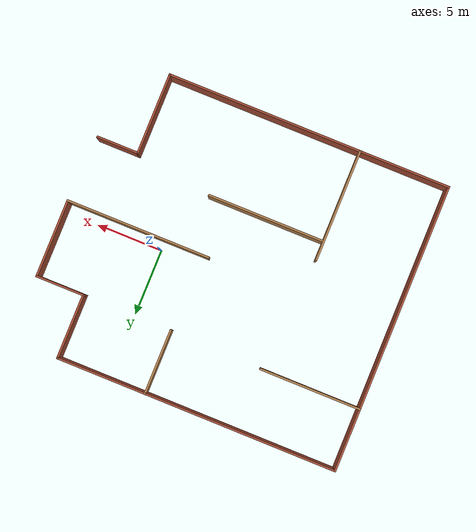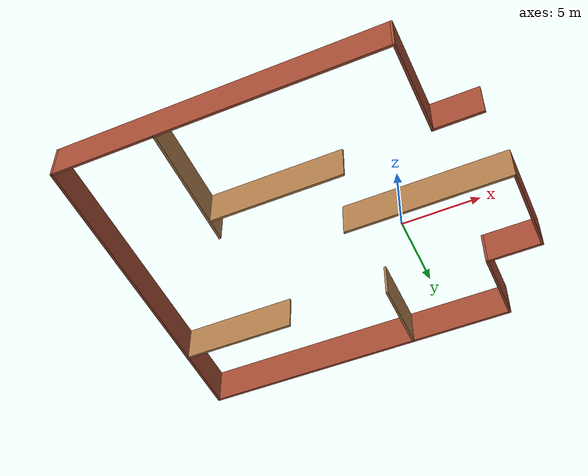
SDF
<?xml version='1.0'?>
<sdf version='1.6'>
  <model name='heat_map_testing'>
    <pose frame=''>-5.0892 -0.972775 0 0 -0 0</pose>
    <link name='Wall_0'>
      <collision name='Wall_0_Collision'>
        <geometry>
          <box>
            <size>11 0.15 2.5</size>
          </box>
        </geometry>
        <pose frame=''>0 0 1.25 0 -0 0</pose>
      </collision>
      <visual name='Wall_0_Visual'>
        <pose frame=''>0 0 1.25 0 -0 0</pose>
        <geometry>
          <box>
            <size>11 0.15 2.5</size>
          </box>
        </geometry>
        <material>
          <script>
            <uri>file://media/materials/scripts/gazebo.material</uri>
            <name>Gazebo/Wood</name>
          </script>
          <ambient>1 1 1 1</ambient>
        </material>
        <meta>
          <layer>0</layer>
        </meta>
      </visual>
      <pose frame=''>7.0542 0.222775 0 0 -0 0</pose>
    </link>
    <link name='Wall_1'>
      <collision name='Wall_1_Collision'>
        <geometry>
          <box>
            <size>6 0.15 2.5</size>
          </box>
        </geometry>
        <pose frame=''>0 0 1.25 0 -0 0</pose>
      </collision>
      <visual name='Wall_1_Visual'>
        <pose frame=''>0 0 1.25 0 -0 0</pose>
        <geometry>
          <box>
            <size>6 0.15 2.5</size>
          </box>
        </geometry>
        <material>
          <script>
            <uri>file://media/materials/scripts/gazebo.material</uri>
            <name>Gazebo/Bricks</name>
          </script>
          <ambient>1 1 1 1</ambient>
        </material>
        <meta>
          <layer>0</layer>
        </meta>
      </visual>
      <pose frame=''>12.4792 3.14778 0 0 -0 1.5708</pose>
    </link>
    <link name='Wall_10'>
      <collision name='Wall_10_Collision'>
        <geometry>
          <box>
            <size>7.75 0.15 2.5</size>
          </box>
        </geometry>
        <pose frame=''>0 0 1.25 0 -0 0</pose>
      </collision>
      <visual name='Wall_10_Visual'>
        <pose frame=''>0 0 1.25 0 -0 0</pose>
        <geometry>
          <box>
            <size>7.75 0.15 2.5</size>
          </box>
        </geometry>
        <material>
          <script>
            <uri>file://media/materials/scripts/gazebo.material</uri>
            <name>Gazebo/Wood</name>
          </script>
          <ambient>1 1 1 1</ambient>
        </material>
        <meta>
          <layer>0</layer>
        </meta>
      </visual>
      <pose frame=''>-8.6792 6.20405 0 0 -0 0</pose>
    </link>
    <link name='Wall_12'>
      <collision name='Wall_12_Collision'>
        <geometry>
          <box>
            <size>8.5 0.15 2.5</size>
          </box>
        </geometry>
        <pose frame=''>0 0 1.25 0 -0 0</pose>
      </collision>
      <visual name='Wall_12_Visual'>
        <pose frame=''>0 0 1.25 0 -0 0</pose>
        <geometry>
          <box>
            <size>8.5 0.15 2.5</size>
          </box>
        </geometry>
        <material>
          <script>
            <uri>file://media/materials/scripts/gazebo.material</uri>
            <name>Gazebo/Wood</name>
          </script>
          <ambient>1 1 1 1</ambient>
        </material>
        <meta>
          <layer>0</layer>
        </meta>
      </visual>
      <pose frame=''>-5.61816 -6.72383 0 0 -0 1.5708</pose>
    </link>
    <link name='Wall_14'>
      <collision name='Wall_14_Collision'>
        <geometry>
          <box>
            <size>5 0.15 2.5</size>
          </box>
        </geometry>
        <pose frame=''>0 0 1.25 0 -0 0</pose>
      </collision>
      <visual name='Wall_14_Visual'>
        <pose frame=''>0 0 1.25 0 -0 0</pose>
        <geometry>
          <box>
            <size>5 0.15 2.5</size>
          </box>
        </geometry>
        <material>
          <script>
            <uri>file://media/materials/scripts/gazebo.material</uri>
            <name>Gazebo/Wood</name>
          </script>
          <ambient>1 1 1 1</ambient>
        </material>
        <meta>
          <layer>0</layer>
        </meta>
      </visual>
      <pose frame=''>2.13779 8.50223 0 0 -0 -1.5708</pose>
    </link>
    <link name='Wall_16'>
      <collision name='Wall_16_Collision'>
        <geometry>
          <box>
            <size>9 0.15 2.5</size>
          </box>
        </geometry>
        <pose frame=''>0 0 1.25 0 -0 0</pose>
      </collision>
      <visual name='Wall_16_Visual'>
        <pose frame=''>0 0 1.25 0 -0 0</pose>
        <geometry>
          <box>
            <size>9 0.15 2.5</size>
          </box>
        </geometry>
        <material>
          <script>
            <uri>file://media/materials/scripts/gazebo.material</uri>
            <name>Gazebo/Wood</name>
          </script>
          <ambient>1 1 1 1</ambient>
        </material>
        <meta>
          <layer>0</layer>
        </meta>
      </visual>
      <pose frame=''>-1.19316 -3.93836 0 0 -0 0</pose>
    </link>
    <link name='Wall_2'>
      <collision name='Wall_2_Collision'>
        <geometry>
          <box>
            <size>3.75 0.15 2.5</size>
          </box>
        </geometry>
        <pose frame=''>0 0 1.25 0 -0 0</pose>
      </collision>
      <visual name='Wall_2_Visual'>
        <pose frame=''>0 0 1.25 0 -0 0</pose>
        <geometry>
          <box>
            <size>3.75 0.15 2.5</size>
          </box>
        </geometry>
        <material>
          <script>
            <uri>file://media/materials/scripts/gazebo.material</uri>
            <name>Gazebo/Bricks</name>
          </script>
          <ambient>1 1 1 1</ambient>
        </material>
        <meta>
          <layer>0</layer>
        </meta>
      </visual>
      <pose frame=''>10.6792 6.07278 0 0 -0 3.14159</pose>
    </link>
    <link name='Wall_3'>
      <collision name='Wall_3_Collision'>
        <geometry>
          <box>
            <size>5 0.15 2.5</size>
          </box>
        </geometry>
        <pose frame=''>0 0 1.25 0 -0 0</pose>
      </collision>
      <visual name='Wall_3_Visual'>
        <pose frame=''>0 0 1.25 0 -0 0</pose>
        <geometry>
          <box>
            <size>5 0.15 2.5</size>
          </box>
        </geometry>
        <material>
          <script>
            <uri>file://media/materials/scripts/gazebo.material</uri>
            <name>Gazebo/Bricks</name>
          </script>
          <ambient>1 1 1 1</ambient>
        </material>
        <meta>
          <layer>0</layer>
        </meta>
      </visual>
      <pose frame=''>8.8792 8.49778 0 0 -0 1.5708</pose>
    </link>
    <link name='Wall_4'>
      <collision name='Wall_4_Collision'>
        <geometry>
          <box>
            <size>21.5 0.15 2.5</size>
          </box>
        </geometry>
        <pose frame=''>0 0 1.25 0 -0 0</pose>
      </collision>
      <visual name='Wall_4_Visual'>
        <pose frame=''>0 0 1.25 0 -0 0</pose>
        <geometry>
          <box>
            <size>21.5 0.15 2.5</size>
          </box>
        </geometry>
        <material>
          <script>
            <uri>file://media/materials/scripts/gazebo.material</uri>
            <name>Gazebo/Bricks</name>
          </script>
          <ambient>1 1 1 1</ambient>
        </material>
        <meta>
          <layer>0</layer>
        </meta>
      </visual>
      <pose frame=''>-1.7958 10.9228 0 0 -0 3.14159</pose>
    </link>
    <link name='Wall_5'>
      <collision name='Wall_5_Collision'>
        <geometry>
          <box>
            <size>22 0.15 2.5</size>
          </box>
        </geometry>
        <pose frame=''>0 0 1.25 0 -0 0</pose>
      </collision>
      <visual name='Wall_5_Visual'>
        <pose frame=''>0 0 1.25 0 -0 0</pose>
        <geometry>
          <box>
            <size>22 0.15 2.5</size>
          </box>
        </geometry>
        <material>
          <script>
            <uri>file://media/materials/scripts/gazebo.material</uri>
            <name>Gazebo/Bricks</name>
          </script>
          <ambient>1 1 1 1</ambient>
        </material>
        <meta>
          <layer>0</layer>
        </meta>
      </visual>
      <pose frame=''>-12.4708 -0.002225 0 0 -0 -1.5708</pose>
    </link>
    <link name='Wall_6'>
      <collision name='Wall_6_Collision'>
        <geometry>
          <box>
            <size>21.75 0.15 2.5</size>
          </box>
        </geometry>
        <pose frame=''>0 0 1.25 0 -0 0</pose>
      </collision>
      <visual name='Wall_6_Visual'>
        <pose frame=''>0 0 1.25 0 -0 0</pose>
        <geometry>
          <box>
            <size>21.75 0.15 2.5</size>
          </box>
        </geometry>
        <material>
          <script>
            <uri>file://media/materials/scripts/gazebo.material</uri>
            <name>Gazebo/Bricks</name>
          </script>
          <ambient>1 1 1 1</ambient>
        </material>
        <meta>
          <layer>0</layer>
        </meta>
      </visual>
      <pose frame=''>-1.6708 -10.9272 0 0 -0 0</pose>
    </link>
    <link name='Wall_7'>
      <collision name='Wall_7_Collision'>
        <geometry>
          <box>
            <size>6.25 0.15 2.5</size>
          </box>
        </geometry>
        <pose frame=''>0 0 1.25 0 -0 0</pose>
      </collision>
      <visual name='Wall_7_Visual'>
        <pose frame=''>0 0 1.25 0 -0 0</pose>
        <geometry>
          <box>
            <size>6.25 0.15 2.5</size>
          </box>
        </geometry>
        <material>
          <script>
            <uri>file://media/materials/scripts/gazebo.material</uri>
            <name>Gazebo/Bricks</name>
          </script>
          <ambient>1 1 1 1</ambient>
        </material>
        <meta>
          <layer>0</layer>
        </meta>
      </visual>
      <pose frame=''>9.1292 -7.87723 0 0 -0 1.5708</pose>
    </link>
    <link name='Wall_8'>
      <collision name='Wall_8_Collision'>
        <geometry>
          <box>
            <size>3.25 0.15 2.5</size>
          </box>
        </geometry>
        <pose frame=''>0 0 1.25 0 -0 0</pose>
      </collision>
      <visual name='Wall_8_Visual'>
        <pose frame=''>0 0 1.25 0 -0 0</pose>
        <geometry>
          <box>
            <size>3.25 0.15 2.5</size>
          </box>
        </geometry>
        <material>
          <script>
            <uri>file://media/materials/scripts/gazebo.material</uri>
            <name>Gazebo/Bricks</name>
          </script>
          <ambient>1 1 1 1</ambient>
        </material>
        <meta>
          <layer>0</layer>
        </meta>
      </visual>
      <pose frame=''>10.6792 -4.82723 0 0 -0 0</pose>
    </link>
    <static>1</static>
  </model>
</sdf>
